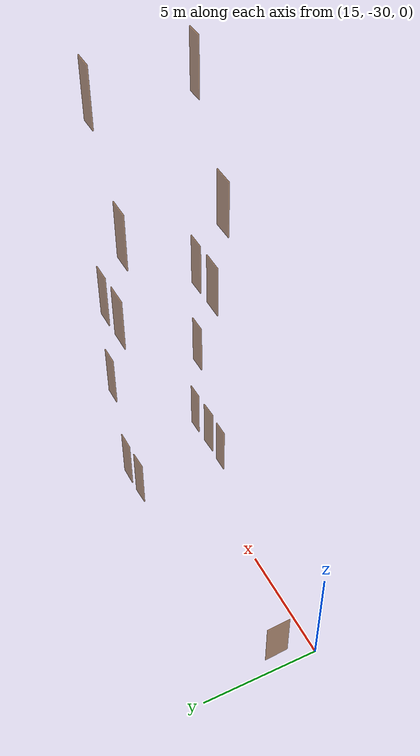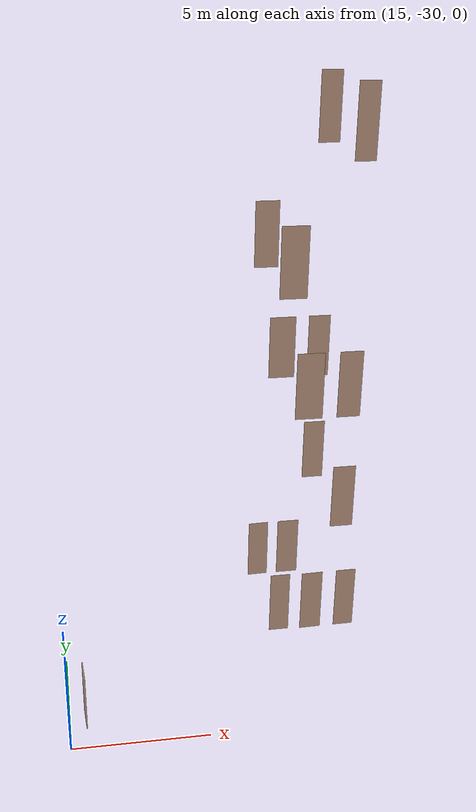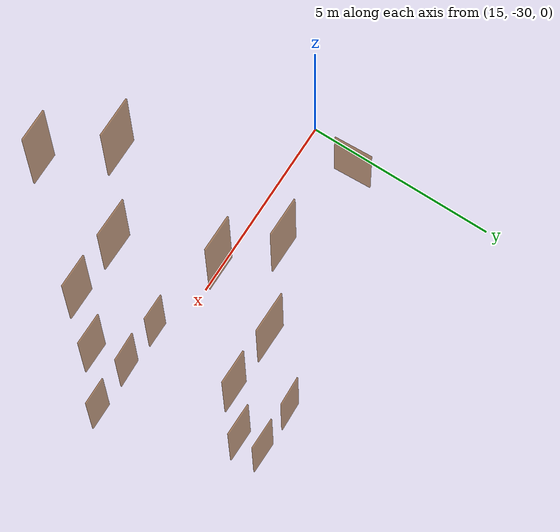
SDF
<sdf version="1.7">
 <world name="sim_world">
  <model name="Snull14">
   <pose>15.587816898779066 -28.54413247209049 0.0 0 0 1.6166443585963561</pose>
   <link name="right">
    <pose>0 0 1.11 0 0 0</pose>
    <visual name="right_visual">
     <geometry><box><size>1.023793662885057 0.03 2.2</size></box></geometry>
     <material>
      <ambient>0.5 0.25 0 0.6</ambient>
      <diffuse>0.5 0.25 0 0.6</diffuse>
      <pbr><metal><metalness>0.0</metalness></metal></pbr>
     </material>
    </visual>
    <collision name="right_collision">
     <geometry><box><size>1.023793662885057 0.03 2.2</size></box></geometry>
     <surface><contact><collide_bitmask>0x02</collide_bitmask></contact></surface>
    </collision>
    <inertial>
     <mass>50.0</mass>
     <inertia><ixx>20.17041666666667</ixx><iyy>24.533972767348345</iyy><izz>4.371056100681675</izz></inertia>
    </inertial>
   </link>
   <joint name="right_joint" type="revolute">
    <parent>world</parent>
    <child>right</child>
    <axis><xyz>0 0 1</xyz><limit><lower>0</lower><upper>1.57</upper></limit></axis>
    <pose>0.5168968314425285 0 0 0 0 0</pose>
   </joint>
   <plugin name="register_component" filename="libregister_component.so">
    <component name="Door">
     <v_max_door>0.5</v_max_door>
     <a_max_door>0.3</a_max_door>
     <a_nom_door>0.15</a_nom_door>
     <dx_min_door>0.01</dx_min_door>
     <f_max_door>500.0</f_max_door>
     <ros_interface>true</ros_interface>
     <door name="Snull14" type="SwingDoor" left_joint_name="empty_joint" right_joint_name="right_joint"/>
    </component>
   </plugin>
  </model>
  <model name="nulln1">
   <pose>22.4242429899563 -25.92749131912032 4.0 0 0 0.040647577871593524</pose>
   <link name="right">
    <pose>0 0 1.11 0 0 0</pose>
    <visual name="right_visual">
     <geometry><box><size>0.7195351271562064 0.03 2.2</size></box></geometry>
     <material>
      <ambient>0.5 0.25 0 0.6</ambient>
      <diffuse>0.5 0.25 0 0.6</diffuse>
      <pbr><metal><metalness>0.0</metalness></metal></pbr>
     </material>
    </visual>
    <collision name="right_collision">
     <geometry><box><size>0.7195351271562064 0.03 2.2</size></box></geometry>
     <surface><contact><collide_bitmask>0x02</collide_bitmask></contact></surface>
    </collision>
    <inertial>
     <mass>50.0</mass>
     <inertia><ixx>20.17041666666667</ixx><iyy>22.323878330048746</iyy><izz>2.1609616633820754</izz></inertia>
    </inertial>
   </link>
   <joint name="right_joint" type="revolute">
    <parent>world</parent>
    <child>right</child>
    <axis><xyz>0 0 1</xyz><limit><lower>0</lower><upper>1.57</upper></limit></axis>
    <pose>0.3647675635781032 0 0 0 0 0</pose>
   </joint>
   <plugin name="register_component" filename="libregister_component.so">
    <component name="Door">
     <v_max_door>0.5</v_max_door>
     <a_max_door>0.3</a_max_door>
     <a_nom_door>0.15</a_nom_door>
     <dx_min_door>0.01</dx_min_door>
     <f_max_door>500.0</f_max_door>
     <ros_interface>true</ros_interface>
     <door name="nulln1" type="SwingDoor" left_joint_name="empty_joint" right_joint_name="right_joint"/>
    </component>
   </plugin>
  </model>
  <model name="nulln2">
   <pose>23.559907403950252 -25.91266848373967 4.0 0 0 0.0</pose>
   <link name="right">
    <pose>0 0 1.11 0 0 0</pose>
    <visual name="right_visual">
     <geometry><box><size>0.7772157711981487 0.03 2.2</size></box></geometry>
     <material>
      <ambient>0.5 0.25 0 0.6</ambient>
      <diffuse>0.5 0.25 0 0.6</diffuse>
      <pbr><metal><metalness>0.0</metalness></metal></pbr>
     </material>
    </visual>
    <collision name="right_collision">
     <geometry><box><size>0.7772157711981487 0.03 2.2</size></box></geometry>
     <surface><contact><collide_bitmask>0x02</collide_bitmask></contact></surface>
    </collision>
    <inertial>
     <mass>50.0</mass>
     <inertia><ixx>20.17041666666667</ixx><iyy>22.68360147916306</iyy><izz>2.5206848124963877</izz></inertia>
    </inertial>
   </link>
   <joint name="right_joint" type="revolute">
    <parent>world</parent>
    <child>right</child>
    <axis><xyz>0 0 1</xyz><limit><lower>0</lower><upper>1.57</upper></limit></axis>
    <pose>0.39360788559907434 0 0 0 0 0</pose>
   </joint>
   <plugin name="register_component" filename="libregister_component.so">
    <component name="Door">
     <v_max_door>0.5</v_max_door>
     <a_max_door>0.3</a_max_door>
     <a_nom_door>0.15</a_nom_door>
     <dx_min_door>0.01</dx_min_door>
     <f_max_door>500.0</f_max_door>
     <ros_interface>true</ros_interface>
     <door name="nulln2" type="SwingDoor" left_joint_name="empty_joint" right_joint_name="right_joint"/>
    </component>
   </plugin>
  </model>
  <model name="nullZ1">
   <pose>22.439196505245853 -29.53519023261022 4.0 0 0 0.0020044516584664914</pose>
   <link name="right">
    <pose>0 0 1.11 0 0 0</pose>
    <visual name="right_visual">
     <geometry><box><size>0.6605759653564555 0.03 2.2</size></box></geometry>
     <material>
      <ambient>0.5 0.25 0 0.6</ambient>
      <diffuse>0.5 0.25 0 0.6</diffuse>
      <pbr><metal><metalness>0.0</metalness></metal></pbr>
     </material>
    </visual>
    <collision name="right_collision">
     <geometry><box><size>0.6605759653564555 0.03 2.2</size></box></geometry>
     <surface><contact><collide_bitmask>0x02</collide_bitmask></contact></surface>
    </collision>
    <inertial>
     <mass>50.0</mass>
     <inertia><ixx>20.17041666666667</ixx><iyy>21.984835858360896</iyy><izz>1.8219191916942212</izz></inertia>
    </inertial>
   </link>
   <joint name="right_joint" type="revolute">
    <parent>world</parent>
    <child>right</child>
    <axis><xyz>0 0 -1</xyz><limit><lower>0</lower><upper>1.57</upper></limit></axis>
    <pose>0.33528798267822774 0 0 0 0 0</pose>
   </joint>
   <plugin name="register_component" filename="libregister_component.so">
    <component name="Door">
     <v_max_door>0.5</v_max_door>
     <a_max_door>0.3</a_max_door>
     <a_nom_door>0.15</a_nom_door>
     <dx_min_door>0.01</dx_min_door>
     <f_max_door>500.0</f_max_door>
     <ros_interface>true</ros_interface>
     <door name="nullZ1" type="SwingDoor" left_joint_name="empty_joint" right_joint_name="right_joint"/>
    </component>
   </plugin>
  </model>
  <model name="nullZ2">
   <pose>23.548034200798995 -29.56659074786243 4.0 0 0 0.03413457394522898</pose>
   <link name="right">
    <pose>0 0 1.11 0 0 0</pose>
    <visual name="right_visual">
     <geometry><box><size>0.7208143992394201 0.03 2.2</size></box></geometry>
     <material>
      <ambient>0.5 0.25 0 0.6</ambient>
      <diffuse>0.5 0.25 0 0.6</diffuse>
      <pbr><metal><metalness>0.0</metalness></metal></pbr>
     </material>
    </visual>
    <collision name="right_collision">
     <geometry><box><size>0.7208143992394201 0.03 2.2</size></box></geometry>
     <surface><contact><collide_bitmask>0x02</collide_bitmask></contact></surface>
    </collision>
    <inertial>
     <mass>50.0</mass>
     <inertia><ixx>20.17041666666667</ixx><iyy>22.331555825628694</iyy><izz>2.168639158962026</izz></inertia>
    </inertial>
   </link>
   <joint name="right_joint" type="revolute">
    <parent>world</parent>
    <child>right</child>
    <axis><xyz>0 0 -1</xyz><limit><lower>0</lower><upper>1.57</upper></limit></axis>
    <pose>0.3654071996197101 0 0 0 0 0</pose>
   </joint>
   <plugin name="register_component" filename="libregister_component.so">
    <component name="Door">
     <v_max_door>0.5</v_max_door>
     <a_max_door>0.3</a_max_door>
     <a_nom_door>0.15</a_nom_door>
     <dx_min_door>0.01</dx_min_door>
     <f_max_door>500.0</f_max_door>
     <ros_interface>true</ros_interface>
     <door name="nullZ2" type="SwingDoor" left_joint_name="empty_joint" right_joint_name="right_joint"/>
    </component>
   </plugin>
  </model>
  <model name="nullZ3">
   <pose>24.741757831460237 -29.546279356308084 4.0 0 0 0.011475533185895583</pose>
   <link name="right">
    <pose>0 0 1.11 0 0 0</pose>
    <visual name="right_visual">
     <geometry><box><size>0.6732768899752665 0.03 2.2</size></box></geometry>
     <material>
      <ambient>0.5 0.25 0 0.6</ambient>
      <diffuse>0.5 0.25 0 0.6</diffuse>
      <pbr><metal><metalness>0.0</metalness></metal></pbr>
     </material>
    </visual>
    <collision name="right_collision">
     <geometry><box><size>0.6732768899752665 0.03 2.2</size></box></geometry>
     <surface><contact><collide_bitmask>0x02</collide_bitmask></contact></surface>
    </collision>
    <inertial>
     <mass>50.0</mass>
     <inertia><ixx>20.17041666666667</ixx><iyy>22.055424044061535</iyy><izz>1.8925073773948629</izz></inertia>
    </inertial>
   </link>
   <joint name="right_joint" type="revolute">
    <parent>world</parent>
    <child>right</child>
    <axis><xyz>0 0 -1</xyz><limit><lower>0</lower><upper>1.57</upper></limit></axis>
    <pose>0.34163844498763324 0 0 0 0 0</pose>
   </joint>
   <plugin name="register_component" filename="libregister_component.so">
    <component name="Door">
     <v_max_door>0.5</v_max_door>
     <a_max_door>0.3</a_max_door>
     <a_nom_door>0.15</a_nom_door>
     <dx_min_door>0.01</dx_min_door>
     <f_max_door>500.0</f_max_door>
     <ros_interface>true</ros_interface>
     <door name="nullZ3" type="SwingDoor" left_joint_name="empty_joint" right_joint_name="right_joint"/>
    </component>
   </plugin>
  </model>
  <model name="1null86">
   <pose>24.45110704551393 -29.54904230295335 8.0 0 0 0.0</pose>
   <link name="right">
    <pose>0 0 1.11 0 0 0</pose>
    <visual name="right_visual">
     <geometry><box><size>0.7457032445954555 0.03 2.2</size></box></geometry>
     <material>
      <ambient>0.5 0.25 0 0.6</ambient>
      <diffuse>0.5 0.25 0 0.6</diffuse>
      <pbr><metal><metalness>0.0</metalness></metal></pbr>
     </material>
    </visual>
    <collision name="right_collision">
     <geometry><box><size>0.7457032445954555 0.03 2.2</size></box></geometry>
     <surface><contact><collide_bitmask>0x02</collide_bitmask></contact></surface>
    </collision>
    <inertial>
     <mass>50.0</mass>
     <inertia><ixx>20.17041666666667</ixx><iyy>22.483638870834127</iyy><izz>2.320722204167457</izz></inertia>
    </inertial>
   </link>
   <joint name="right_joint" type="revolute">
    <parent>world</parent>
    <child>right</child>
    <axis><xyz>0 0 -1</xyz><limit><lower>0</lower><upper>1.57</upper></limit></axis>
    <pose>0.37785162229772773 0 0 0 0 0</pose>
   </joint>
   <plugin name="register_component" filename="libregister_component.so">
    <component name="Door">
     <v_max_door>0.5</v_max_door>
     <a_max_door>0.3</a_max_door>
     <a_nom_door>0.15</a_nom_door>
     <dx_min_door>0.01</dx_min_door>
     <f_max_door>500.0</f_max_door>
     <ros_interface>true</ros_interface>
     <door name="1null86" type="SwingDoor" left_joint_name="empty_joint" right_joint_name="right_joint"/>
    </component>
   </plugin>
  </model>
  <model name="1null87">
   <pose>24.394130605234643 -25.87219504909829 8.0 0 0 0.0</pose>
   <link name="right">
    <pose>0 0 1.11 0 0 0</pose>
    <visual name="right_visual">
     <geometry><box><size>0.746449986932008 0.03 2.2</size></box></geometry>
     <material>
      <ambient>0.5 0.25 0 0.6</ambient>
      <diffuse>0.5 0.25 0 0.6</diffuse>
      <pbr><metal><metalness>0.0</metalness></metal></pbr>
     </material>
    </visual>
    <collision name="right_collision">
     <geometry><box><size>0.746449986932008 0.03 2.2</size></box></geometry>
     <surface><contact><collide_bitmask>0x02</collide_bitmask></contact></surface>
    </collision>
    <inertial>
     <mass>50.0</mass>
     <inertia><ixx>20.17041666666667</ixx><iyy>22.488281595794984</iyy><izz>2.3253649291283125</izz></inertia>
    </inertial>
   </link>
   <joint name="right_joint" type="revolute">
    <parent>world</parent>
    <child>right</child>
    <axis><xyz>0 0 1</xyz><limit><lower>0</lower><upper>1.57</upper></limit></axis>
    <pose>0.378224993466004 0 0 0 0 0</pose>
   </joint>
   <plugin name="register_component" filename="libregister_component.so">
    <component name="Door">
     <v_max_door>0.5</v_max_door>
     <a_max_door>0.3</a_max_door>
     <a_nom_door>0.15</a_nom_door>
     <dx_min_door>0.01</dx_min_door>
     <f_max_door>500.0</f_max_door>
     <ros_interface>true</ros_interface>
     <door name="1null87" type="SwingDoor" left_joint_name="empty_joint" right_joint_name="right_joint"/>
    </component>
   </plugin>
  </model>
  <model name="2null79">
   <pose>24.45110704551393 -29.54904230295335 12.0 0 0 0.0</pose>
   <link name="right">
    <pose>0 0 1.11 0 0 0</pose>
    <visual name="right_visual">
     <geometry><box><size>0.7457032445954555 0.03 2.2</size></box></geometry>
     <material>
      <ambient>0.5 0.25 0 0.6</ambient>
      <diffuse>0.5 0.25 0 0.6</diffuse>
      <pbr><metal><metalness>0.0</metalness></metal></pbr>
     </material>
    </visual>
    <collision name="right_collision">
     <geometry><box><size>0.7457032445954555 0.03 2.2</size></box></geometry>
     <surface><contact><collide_bitmask>0x02</collide_bitmask></contact></surface>
    </collision>
    <inertial>
     <mass>50.0</mass>
     <inertia><ixx>20.17041666666667</ixx><iyy>22.483638870834127</iyy><izz>2.320722204167457</izz></inertia>
    </inertial>
   </link>
   <joint name="right_joint" type="revolute">
    <parent>world</parent>
    <child>right</child>
    <axis><xyz>0 0 -1</xyz><limit><lower>0</lower><upper>1.57</upper></limit></axis>
    <pose>0.37785162229772773 0 0 0 0 0</pose>
   </joint>
   <plugin name="register_component" filename="libregister_component.so">
    <component name="Door">
     <v_max_door>0.5</v_max_door>
     <a_max_door>0.3</a_max_door>
     <a_nom_door>0.15</a_nom_door>
     <dx_min_door>0.01</dx_min_door>
     <f_max_door>500.0</f_max_door>
     <ros_interface>true</ros_interface>
     <door name="2null79" type="SwingDoor" left_joint_name="empty_joint" right_joint_name="right_joint"/>
    </component>
   </plugin>
  </model>
  <model name="2null80">
   <pose>24.394130605234643 -25.87219504909829 12.0 0 0 0.0</pose>
   <link name="right">
    <pose>0 0 1.11 0 0 0</pose>
    <visual name="right_visual">
     <geometry><box><size>0.746449986932008 0.03 2.2</size></box></geometry>
     <material>
      <ambient>0.5 0.25 0 0.6</ambient>
      <diffuse>0.5 0.25 0 0.6</diffuse>
      <pbr><metal><metalness>0.0</metalness></metal></pbr>
     </material>
    </visual>
    <collision name="right_collision">
     <geometry><box><size>0.746449986932008 0.03 2.2</size></box></geometry>
     <surface><contact><collide_bitmask>0x02</collide_bitmask></contact></surface>
    </collision>
    <inertial>
     <mass>50.0</mass>
     <inertia><ixx>20.17041666666667</ixx><iyy>22.488281595794984</iyy><izz>2.3253649291283125</izz></inertia>
    </inertial>
   </link>
   <joint name="right_joint" type="revolute">
    <parent>world</parent>
    <child>right</child>
    <axis><xyz>0 0 1</xyz><limit><lower>0</lower><upper>1.57</upper></limit></axis>
    <pose>0.378224993466004 0 0 0 0 0</pose>
   </joint>
   <plugin name="register_component" filename="libregister_component.so">
    <component name="Door">
     <v_max_door>0.5</v_max_door>
     <a_max_door>0.3</a_max_door>
     <a_nom_door>0.15</a_nom_door>
     <dx_min_door>0.01</dx_min_door>
     <f_max_door>500.0</f_max_door>
     <ros_interface>true</ros_interface>
     <door name="2null80" type="SwingDoor" left_joint_name="empty_joint" right_joint_name="right_joint"/>
    </component>
   </plugin>
  </model>
  <model name="nullh2">
   <pose>23.09761789194637 -25.881267968487457 12.0 0 0 -0.0022126577289395</pose>
   <link name="right">
    <pose>0 0 1.11 0 0 0</pose>
    <visual name="right_visual">
     <geometry><box><size>0.90121456676933 0.03 2.2</size></box></geometry>
     <material>
      <ambient>0.5 0.25 0 0.6</ambient>
      <diffuse>0.5 0.25 0 0.6</diffuse>
      <pbr><metal><metalness>0.0</metalness></metal></pbr>
     </material>
    </visual>
    <collision name="right_collision">
     <geometry><box><size>0.90121456676933 0.03 2.2</size></box></geometry>
     <surface><contact><collide_bitmask>0x02</collide_bitmask></contact></surface>
    </collision>
    <inertial>
     <mass>50.0</mass>
     <inertia><ixx>20.17041666666667</ixx><iyy>23.550782063988468</iyy><izz>3.3878653973217965</izz></inertia>
    </inertial>
   </link>
   <joint name="right_joint" type="revolute">
    <parent>world</parent>
    <child>right</child>
    <axis><xyz>0 0 1</xyz><limit><lower>0</lower><upper>1.57</upper></limit></axis>
    <pose>0.455607283384665 0 0 0 0 0</pose>
   </joint>
   <plugin name="register_component" filename="libregister_component.so">
    <component name="Door">
     <v_max_door>0.5</v_max_door>
     <a_max_door>0.3</a_max_door>
     <a_nom_door>0.15</a_nom_door>
     <dx_min_door>0.01</dx_min_door>
     <f_max_door>500.0</f_max_door>
     <ros_interface>true</ros_interface>
     <door name="nullh2" type="SwingDoor" left_joint_name="empty_joint" right_joint_name="right_joint"/>
    </component>
   </plugin>
  </model>
  <model name="nullh3">
   <pose>23.152895493409986 -29.54738080125451 12.0 0 0 -0.010018108836361688</pose>
   <link name="right">
    <pose>0 0 1.11 0 0 0</pose>
    <visual name="right_visual">
     <geometry><box><size>0.8807589580711075 0.03 2.2</size></box></geometry>
     <material>
      <ambient>0.5 0.25 0 0.6</ambient>
      <diffuse>0.5 0.25 0 0.6</diffuse>
      <pbr><metal><metalness>0.0</metalness></metal></pbr>
     </material>
    </visual>
    <collision name="right_collision">
     <geometry><box><size>0.8807589580711075 0.03 2.2</size></box></geometry>
     <surface><contact><collide_bitmask>0x02</collide_bitmask></contact></surface>
    </collision>
    <inertial>
     <mass>50.0</mass>
     <inertia><ixx>20.17041666666667</ixx><iyy>23.3989014259271</iyy><izz>3.235984759260429</izz></inertia>
    </inertial>
   </link>
   <joint name="right_joint" type="revolute">
    <parent>world</parent>
    <child>right</child>
    <axis><xyz>0 0 -1</xyz><limit><lower>0</lower><upper>1.57</upper></limit></axis>
    <pose>0.44537947903555375 0 0 0 0 0</pose>
   </joint>
   <plugin name="register_component" filename="libregister_component.so">
    <component name="Door">
     <v_max_door>0.5</v_max_door>
     <a_max_door>0.3</a_max_door>
     <a_nom_door>0.15</a_nom_door>
     <dx_min_door>0.01</dx_min_door>
     <f_max_door>500.0</f_max_door>
     <ros_interface>true</ros_interface>
     <door name="nullh3" type="SwingDoor" left_joint_name="empty_joint" right_joint_name="right_joint"/>
    </component>
   </plugin>
  </model>
  <model name="dvdbss">
   <pose>22.430837271158016 -25.945968537812004 16.0 0 0 -4.1949482929225073e-05</pose>
   <link name="right">
    <pose>0 0 1.11 0 0 0</pose>
    <visual name="right_visual">
     <geometry><box><size>0.8015834795942904 0.03 2.2</size></box></geometry>
     <material>
      <ambient>0.5 0.25 0 0.6</ambient>
      <diffuse>0.5 0.25 0 0.6</diffuse>
      <pbr><metal><metalness>0.0</metalness></metal></pbr>
     </material>
    </visual>
    <collision name="right_collision">
     <geometry><box><size>0.8015834795942904 0.03 2.2</size></box></geometry>
     <surface><contact><collide_bitmask>0x02</collide_bitmask></contact></surface>
    </collision>
    <inertial>
     <mass>50.0</mass>
     <inertia><ixx>20.17041666666667</ixx><iyy>22.843900311493712</iyy><izz>2.680983644827043</izz></inertia>
    </inertial>
   </link>
   <joint name="right_joint" type="revolute">
    <parent>world</parent>
    <child>right</child>
    <axis><xyz>0 0 1</xyz><limit><lower>0</lower><upper>1.57</upper></limit></axis>
    <pose>0.4057917397971452 0 0 0 0 0</pose>
   </joint>
   <plugin name="register_component" filename="libregister_component.so">
    <component name="Door">
     <v_max_door>0.5</v_max_door>
     <a_max_door>0.3</a_max_door>
     <a_nom_door>0.15</a_nom_door>
     <dx_min_door>0.01</dx_min_door>
     <f_max_door>500.0</f_max_door>
     <ros_interface>true</ros_interface>
     <door name="dvdbss" type="SwingDoor" left_joint_name="empty_joint" right_joint_name="right_joint"/>
    </component>
   </plugin>
  </model>
  <model name="bdfbnfd">
   <pose>22.48478238469386 -29.596579517863056 16.0 0 0 -4.194948292983785e-05</pose>
   <link name="right">
    <pose>0 0 1.11 0 0 0</pose>
    <visual name="right_visual">
     <geometry><box><size>0.8488097938597426 0.03 2.2</size></box></geometry>
     <material>
      <ambient>0.5 0.25 0 0.6</ambient>
      <diffuse>0.5 0.25 0 0.6</diffuse>
      <pbr><metal><metalness>0.0</metalness></metal></pbr>
     </material>
    </visual>
    <collision name="right_collision">
     <geometry><box><size>0.8488097938597426 0.03 2.2</size></box></geometry>
     <surface><contact><collide_bitmask>0x02</collide_bitmask></contact></surface>
    </collision>
    <inertial>
     <mass>50.0</mass>
     <inertia><ixx>20.17041666666667</ixx><iyy>23.168658608967583</iyy><izz>3.005741942300912</izz></inertia>
    </inertial>
   </link>
   <joint name="right_joint" type="revolute">
    <parent>world</parent>
    <child>right</child>
    <axis><xyz>0 0 -1</xyz><limit><lower>0</lower><upper>1.57</upper></limit></axis>
    <pose>0.4294048969298713 0 0 0 0 0</pose>
   </joint>
   <plugin name="register_component" filename="libregister_component.so">
    <component name="Door">
     <v_max_door>0.5</v_max_door>
     <a_max_door>0.3</a_max_door>
     <a_nom_door>0.15</a_nom_door>
     <dx_min_door>0.01</dx_min_door>
     <f_max_door>500.0</f_max_door>
     <ros_interface>true</ros_interface>
     <door name="bdfbnfd" type="SwingDoor" left_joint_name="empty_joint" right_joint_name="right_joint"/>
    </component>
   </plugin>
  </model>
  <model name="nullxsca">
   <pose>24.374891965459064 -25.947643537438505 20.0 0 0 -0.0002303086094737824</pose>
   <link name="right">
    <pose>0 0 1.11 0 0 0</pose>
    <visual name="right_visual">
     <geometry><box><size>0.6923199865274906 0.03 2.2</size></box></geometry>
     <material>
      <ambient>0.5 0.25 0 0.6</ambient>
      <diffuse>0.5 0.25 0 0.6</diffuse>
      <pbr><metal><metalness>0.0</metalness></metal></pbr>
     </material>
    </visual>
    <collision name="right_collision">
     <geometry><box><size>0.6923199865274906 0.03 2.2</size></box></geometry>
     <surface><contact><collide_bitmask>0x02</collide_bitmask></contact></surface>
    </collision>
    <inertial>
     <mass>50.0</mass>
     <inertia><ixx>20.17041666666667</ixx><iyy>22.163779015605943</iyy><izz>2.00086234893927</izz></inertia>
    </inertial>
   </link>
   <joint name="right_joint" type="revolute">
    <parent>world</parent>
    <child>right</child>
    <axis><xyz>0 0 1</xyz><limit><lower>0</lower><upper>1.57</upper></limit></axis>
    <pose>0.3511599932637453 0 0 0 0 0</pose>
   </joint>
   <plugin name="register_component" filename="libregister_component.so">
    <component name="Door">
     <v_max_door>0.5</v_max_door>
     <a_max_door>0.3</a_max_door>
     <a_nom_door>0.15</a_nom_door>
     <dx_min_door>0.01</dx_min_door>
     <f_max_door>500.0</f_max_door>
     <ros_interface>true</ros_interface>
     <door name="nullxsca" type="SwingDoor" left_joint_name="empty_joint" right_joint_name="right_joint"/>
    </component>
   </plugin>
  </model>
  <model name="cdsvdsv">
   <pose>24.444323411723573 -29.598232212324397 20.0 0 0 -0.00023030860946426308</pose>
   <link name="right">
    <pose>0 0 1.11 0 0 0</pose>
    <visual name="right_visual">
     <geometry><box><size>0.6289013763148674 0.03 2.2</size></box></geometry>
     <material>
      <ambient>0.5 0.25 0 0.6</ambient>
      <diffuse>0.5 0.25 0 0.6</diffuse>
      <pbr><metal><metalness>0.0</metalness></metal></pbr>
     </material>
    </visual>
    <collision name="right_collision">
     <geometry><box><size>0.6289013763148674 0.03 2.2</size></box></geometry>
     <surface><contact><collide_bitmask>0x02</collide_bitmask></contact></surface>
    </collision>
    <inertial>
     <mass>50.0</mass>
     <inertia><ixx>20.17041666666667</ixx><iyy>21.814653921378067</iyy><izz>1.6517372547113938</izz></inertia>
    </inertial>
   </link>
   <joint name="right_joint" type="revolute">
    <parent>world</parent>
    <child>right</child>
    <axis><xyz>0 0 -1</xyz><limit><lower>0</lower><upper>1.57</upper></limit></axis>
    <pose>0.3194506881574337 0 0 0 0 0</pose>
   </joint>
   <plugin name="register_component" filename="libregister_component.so">
    <component name="Door">
     <v_max_door>0.5</v_max_door>
     <a_max_door>0.3</a_max_door>
     <a_nom_door>0.15</a_nom_door>
     <dx_min_door>0.01</dx_min_door>
     <f_max_door>500.0</f_max_door>
     <ros_interface>true</ros_interface>
     <door name="cdsvdsv" type="SwingDoor" left_joint_name="empty_joint" right_joint_name="right_joint"/>
    </component>
   </plugin>
  </model>
 </world>
</sdf>
